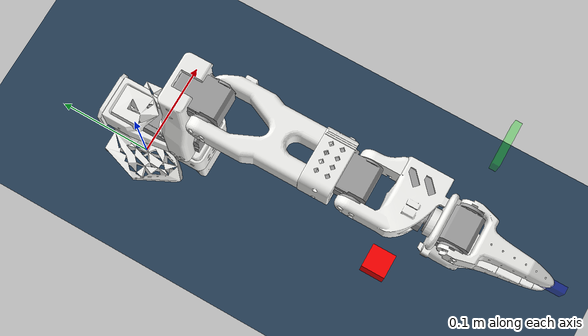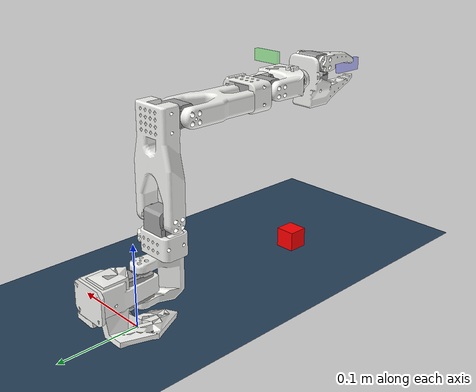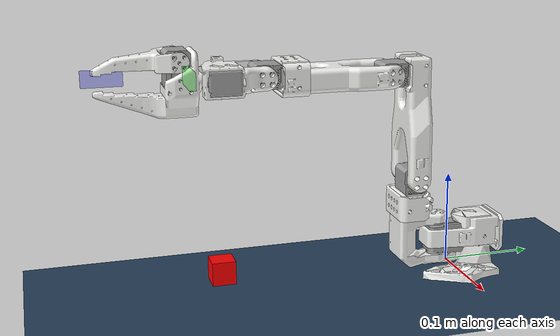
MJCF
<mujoco model="standalone_scene">
  <compiler angle="radian" meshdir="/home/ben/all_projects/SO-ARM100/Simulation/SO101/assets" autolimits="true"/>

  <option gravity="0 0 -9.81" timestep="0.002" iterations="40" cone="elliptic" />

  <size nconmax="500" njmax="2000" />

  <visual>
    <headlight active="0"/>
  </visual>

  <default>
    <default class="so101_new_calib">
      <joint damping="1" frictionloss="0.1" armature="0.005"/>
      <position kp="50"/>
      <default class="visual">
        <geom type="mesh" contype="0" conaffinity="0" group="2"/>
      </default>
      <default class="collision">
        <geom group="3" contype="1" conaffinity="1"/>
      </default>
    </default>
  </default>
  <!-- Additional joints_properties.xml -->
  <default>
    <default class="sts3215">
      <geom contype="0" conaffinity="0"/>
      <joint damping="0.60" frictionloss="0.052" armature="0.028"/>
      <position kp="17.8"/>
    </default>
    <default class="backlash">
      <!-- +/- 0.5° of backlash -->
      <joint damping="0.01" frictionloss="0" armature="0.01" limited="true" range="-0.008726646259971648 0.008726646259971648"/>
    </default>
  </default>

  <asset>
    <!-- Assets from the scene -->
    <texture type="2d" name="groundplane" builtin="checker" rgb1="0.2 0.3 0.4" rgb2="0.1 0.2 0.3" width="100" height="100"/>
    <material name="ground_mat" texture="groundplane" texrepeat="10 10" />

    <!-- Assets from the robot -->
    <mesh file="rotation_pitch_so101_v1.stl"/>
    <mesh file="moving_jaw_so101_v1.stl"/>
    <mesh file="sts3215_03a_v1.stl"/>
    <mesh file="motor_holder_so101_wrist_v1.stl"/>
    <mesh file="wrist_roll_follower_so101_v1.stl"/>
    <mesh file="base_so101_v2.stl"/>
    <mesh file="under_arm_so101_v1.stl"/>
    <mesh file="wrist_roll_pitch_so101_v2.stl"/>
    <mesh file="waveshare_mounting_plate_so101_v2.stl"/>
    <mesh file="sts3215_03a_no_horn_v1.stl"/>
    <mesh file="motor_holder_so101_base_v1.stl"/>
    <mesh file="base_motor_holder_so101_v1.stl"/>
    <mesh file="upper_arm_so101_v1.stl"/>
    <material name="base_motor_holder_so101_v1_material" rgba="0.964706 0.964706 0.952941 1"/>
    <material name="base_so101_v2_material" rgba="0.964706 0.964706 0.952941 1"/>
    <material name="sts3215_03a_v1_material" rgba="0.627451 0.627451 0.627451 1"/>
    <material name="waveshare_mounting_plate_so101_v2_material" rgba="0.964706 0.964706 0.952941 1"/>
    <material name="motor_holder_so101_base_v1_material" rgba="0.964706 0.964706 0.952941 1"/>
    <material name="rotation_pitch_so101_v1_material" rgba="0.964706 0.964706 0.952941 1"/>
    <material name="upper_arm_so101_v1_material" rgba="0.964706 0.964706 0.952941 1"/>
    <material name="under_arm_so101_v1_material" rgba="0.964706 0.964706 0.952941 1"/>
    <material name="motor_holder_so101_wrist_v1_material" rgba="0.964706 0.964706 0.952941 1"/>
    <material name="sts3215_03a_no_horn_v1_material" rgba="0.627451 0.627451 0.627451 1"/>
    <material name="wrist_roll_pitch_so101_v2_material" rgba="0.964706 0.964706 0.952941 1"/>
    <material name="wrist_roll_follower_so101_v1_material" rgba="0.964706 0.964706 0.952941 1"/>
    <material name="moving_jaw_so101_v1_material" rgba="0.964706 0.964706 0.952941 1"/>
  </asset>

  <worldbody>
    <!-- Ground plane -->
    <light name="top" pos="0 0 2" castshadow="true"/>
    <light name="top2" pos="1 1 2" castshadow="true"/>
    <geom name="floor" type="plane" size="1.5 1.5 0.1" material="ground_mat" contype="1" conaffinity="1" />

    <!-- Robot -->
    <body name="base" pos="0 0 -0.04" quat="1 0 0 0" childclass="so101_new_calib">
      <inertial pos="0.020739 0.00204287 0.065966" mass="0.147" fullinertia="0.000136117 0.000114686 0.000130364 4.59787e-07 9.75275e-08 -4.97151e-06"/>
      <geom type="mesh" class="visual" pos="0.0206915 0.0221255 0.0300817" quat="0.707107 0.707107 7.85046e-16 8.68107e-16" mesh="base_motor_holder_so101_v1" material="base_motor_holder_so101_v1_material"/>
      <geom type="mesh" class="visual" pos="0.0207909 0.0221255 0.0300817" quat="0.707107 0.707107 -0 -0" mesh="base_so101_v2" material="base_so101_v2_material"/>
      <geom type="mesh" class="visual" pos="0.0207909 -0.0105745 0.0761817" quat="0.707107 -7.69919e-16 8.95976e-16 -0.707107" mesh="sts3215_03a_v1" material="sts3215_03a_v1_material"/>
      <geom type="mesh" class="visual" pos="0.0205915 0.0467435 0.0798817" quat="0.707107 0.707107 -3.34318e-15 5.1276e-15" mesh="waveshare_mounting_plate_so101_v2" material="waveshare_mounting_plate_so101_v2_material"/>
      <site group="3" name="base" pos="0.020791 0.0157608 0.0324817" quat="0 1 0 0"/>
      <body name="shoulder" pos="0.0207909 -0.0230745 0.0948817" quat="7.88629e-16 -0.707107 -0.707107 7.69003e-16">
        <joint axis="0 0 1" name="1" type="hinge" range="-1.9198621771937616 1.9198621771937634" class="sts3215"/>
        <inertial pos="-0.0307604 -1.66727e-05 -0.0252713" mass="0.100006" fullinertia="8.3759e-05 8.10403e-05 2.39783e-05 7.55525e-08 -1.16342e-06 1.54663e-07"/>
        <geom type="mesh" class="visual" pos="-0.0303992 0.000422241 -0.0417" quat="0.5 0.5 0.5 -0.5" mesh="sts3215_03a_v1" material="sts3215_03a_v1_material"/>
        <geom type="mesh" class="collision" pos="-0.0303992 0.000422241 -0.0417" quat="0.5 0.5 0.5 -0.5" mesh="sts3215_03a_v1" material="sts3215_03a_v1_material"/>
        <geom type="mesh" class="visual" pos="-0.0675992 -0.000177759 0.0158499" quat="0.5 0.5 -0.5 0.5" mesh="motor_holder_so101_base_v1" material="motor_holder_so101_base_v1_material"/>
        <geom type="mesh" class="collision" pos="-0.0675992 -0.000177759 0.0158499" quat="0.5 0.5 -0.5 0.5" mesh="motor_holder_so101_base_v1" material="motor_holder_so101_base_v1_material"/>
        <geom type="mesh" class="visual" pos="0.0122008 2.22413e-05 0.0464" quat="0.707107 -0.707107 0 0" mesh="rotation_pitch_so101_v1" material="rotation_pitch_so101_v1_material"/>
        <geom type="mesh" class="collision" pos="0.0122008 2.22413e-05 0.0464" quat="0.707107 -0.707107 0 0" mesh="rotation_pitch_so101_v1" material="rotation_pitch_so101_v1_material"/>
        <body name="upper_arm" pos="-0.0303992 -0.0182778 -0.0542" quat="0.5 -0.5 -0.5 -0.5">
          <joint axis="0 0 1" name="2" type="hinge" range="-1.7453292519943269 1.7453292519943322" class="sts3215"/>
          <inertial pos="-0.0898471 -0.00838224 0.0184089" mass="0.103" fullinertia="4.08002e-05 0.000147318 0.000142487 -1.97819e-05 -4.03016e-08 8.97326e-09"/>
          <geom type="mesh" class="visual" pos="-0.11257 -0.0155 0.0187" quat="4.31775e-16 -0.707107 0.707107 -2.94392e-16" mesh="sts3215_03a_v1" material="sts3215_03a_v1_material"/>
          <geom type="mesh" class="collision" pos="-0.11257 -0.0155 0.0187" quat="4.31775e-16 -0.707107 0.707107 -2.94392e-16" mesh="sts3215_03a_v1" material="sts3215_03a_v1_material"/>
          <geom type="mesh" class="visual" pos="-0.065085 0.012 0.0182" quat="0 1 0 0" mesh="upper_arm_so101_v1" material="upper_arm_so101_v1_material"/>
          <geom type="mesh" class="collision" pos="-0.065085 0.012 0.0182" quat="0 1 0 0" mesh="upper_arm_so101_v1" material="upper_arm_so101_v1_material"/>
          <body name="lower_arm" pos="-0.11257 -0.028 2.46331e-16" quat="0.707107 -2.94392e-16 -3.85906e-16 0.707107">
            <joint axis="0 0 1" name="3" type="hinge" range="-1.7453292519943295 1.5707963267948966" class="sts3215"/>
            <inertial pos="-0.0980701 0.00324376 0.0182831" mass="0.104" fullinertia="2.87438e-05 0.000159844 0.00014529 7.41152e-06 1.26409e-06 -4.90188e-08"/>
            <geom type="mesh" class="visual" pos="-0.0648499 -0.032 0.0182" quat="0 1 0 0" mesh="under_arm_so101_v1" material="under_arm_so101_v1_material"/>
            <geom type="mesh" class="collision" pos="-0.0648499 -0.032 0.0182" quat="0 1 0 0" mesh="under_arm_so101_v1" material="under_arm_so101_v1_material"/>
            <geom type="mesh" class="visual" pos="-0.0648499 -0.032 0.018" quat="3.3891e-16 -1 -1.9186e-15 6.33174e-16" mesh="motor_holder_so101_wrist_v1" material="motor_holder_so101_wrist_v1_material"/>
            <geom type="mesh" class="collision" pos="-0.0648499 -0.032 0.018" quat="3.3891e-16 -1 -1.9186e-15 6.33174e-16" mesh="motor_holder_so101_wrist_v1" material="motor_holder_so101_wrist_v1_material"/>
            <geom type="mesh" class="visual" pos="-0.1224 0.0052 0.0187" quat="8.32667e-16 -1.56949e-15 -1 5.55112e-16" mesh="sts3215_03a_v1" material="sts3215_03a_v1_material"/>
            <geom type="mesh" class="collision" pos="-0.1224 0.0052 0.0187" quat="8.32667e-16 -1.56949e-15 -1 5.55112e-16" mesh="sts3215_03a_v1" material="sts3215_03a_v1_material"/>
            <body name="wrist" pos="-0.1349 0.0052 1.65232e-16" quat="0.707107 1.31614e-15 9.90601e-17 -0.707107">
              <joint axis="0 0 1" name="4" type="hinge" range="-1.6580627969561903 1.658062781833036" class="sts3215"/>
              <inertial pos="-0.000103312 -0.0386143 0.0281156" mass="0.079" fullinertia="3.68263e-05 2.5391e-05 2.1e-05 1.7893e-08 -5.28128e-08 3.6412e-06"/>
              <geom type="mesh" class="visual" pos="5.55112e-17 -0.0424 0.0306" quat="0.5 0.5 0.5 -0.5" mesh="sts3215_03a_no_horn_v1" material="sts3215_03a_no_horn_v1_material"/>
              <geom type="mesh" class="collision" pos="5.55112e-17 -0.0424 0.0306" quat="0.5 0.5 0.5 -0.5" mesh="sts3215_03a_no_horn_v1" material="sts3215_03a_no_horn_v1_material"/>
              <geom type="mesh" class="visual" pos="0 -0.028 0.0181" quat="0.5 -0.5 -0.5 -0.5" mesh="wrist_roll_pitch_so101_v2" material="wrist_roll_pitch_so101_v2_material"/>
              <geom type="mesh" class="collision" pos="0 -0.028 0.0181" quat="0.5 -0.5 -0.5 -0.5" mesh="wrist_roll_pitch_so101_v2" material="wrist_roll_pitch_so101_v2_material"/>
              <body name="gripper" pos="0 -0.0611 0.0181" quat="3.31663e-08 -3.31663e-08 -0.707107 -0.707107">
                <joint axis="0 0 1" name="5" type="hinge" range="-2.7925268969992407 2.7925267093826136" class="sts3215"/>
                <inertial pos="0.000213627 0.000245138 -0.025187" mass="0.087" fullinertia="2.75087e-05 4.33657e-05 3.45059e-05 -3.35241e-07 -5.7352e-06 -5.17847e-08"/>
                <geom type="mesh" class="visual" pos="0.0077 0.0001 -0.0234" quat="0.707107 -0.707107 6.48145e-15 1.58472e-15" mesh="sts3215_03a_v1" material="sts3215_03a_v1_material"/>
                <geom type="mesh" class="collision" pos="0.0077 0.0001 -0.0234" quat="0.707107 -0.707107 6.48145e-15 1.58472e-15" mesh="sts3215_03a_v1" material="sts3215_03a_v1_material"/>
                <geom type="mesh" class="visual" pos="5.55112e-17 -0.000218214 0.000949706" quat="0 1 0 0" mesh="wrist_roll_follower_so101_v1" material="wrist_roll_follower_so101_v1_material"/>
                <geom type="mesh" class="collision" pos="5.55112e-17 -0.000218214 0.000949706" quat="0 1 0 0" mesh="wrist_roll_follower_so101_v1" material="wrist_roll_follower_so101_v1_material"/>
                <!-- Fixed jaw collision box - positioned at actual gripping surface -->
                <geom name="fixed_jaw" type="box" size="0.008 0.003 0.02" pos="0.005 0 -0.095" rgba="0 0 1 0.3" contype="1" conaffinity="1" margin="0.0015"/>
                <site group="3" name="gripper" pos="-0.0079 -0.000218121 -0.0981274" quat="0.5 -0.5 0.5 -0.5"/>
                <body name="moving_jaw_so101_v1" pos="0.0202 0.0188 -0.0234" quat="0.707107 0.707107 1.47485e-15 -6.52758e-15">
                  <joint axis="0 0 1" name="6" type="hinge" range="-0.17453292519943295 1.7453292519943295" class="sts3215"/>
                  <inertial pos="-0.00157495 -0.0300244 0.0192755" mass="0.012" fullinertia="6.61427e-06 1.89032e-06 5.28738e-06 -3.19807e-07 -5.90717e-09 -1.09945e-07"/>
                  <geom type="mesh" class="visual" pos="-5.55112e-17 -1.94746e-17 0.0189" quat="1 -0 1.86338e-16 6.90343e-24" mesh="moving_jaw_so101_v1" material="moving_jaw_so101_v1_material"/>
                  <geom type="mesh" class="collision" pos="-5.55112e-17 -1.94746e-17 0.0189" quat="1 -0 1.86338e-16 6.90343e-24" mesh="moving_jaw_so101_v1" material="moving_jaw_so101_v1_material"/>
                  <!-- Moving jaw collision box - positioned at actual gripping surface -->
                  <geom name="moving_jaw_tip" type="box" size="0.008 0.003 0.02" pos="-0.005 0 -0.06" rgba="0 1 0 0.3" contype="1" conaffinity="1" margin="0.0015"/>
                </body>
              </body>
            </body>
          </body>
        </body>
      </body>
    </body>

    <!-- A cube to be manipulated -->
    <body name="cube" pos="0.01 -0.26 0.02">
        <joint name="cube_joint" type="free" frictionloss="0.01" />
        <inertial pos="0 0 0" mass="0.05" diaginertia="0.0008 0.0008 0.0008" />
        <geom name="cube_geom" type="box" size="0.0125 0.0125 0.0125" rgba="1 0 0 1" friction="1 0.005 0.0001" contype="1" conaffinity="1" margin="0.0015"/>
    </body>
  </worldbody>

  <actuator>
    <position class="sts3215" name="1" joint="1" forcerange="-3.35 3.35"/>
    <position class="sts3215" name="2" joint="2" forcerange="-3.35 3.35"/>
    <position class="sts3215" name="3" joint="3" forcerange="-3.35 3.35"/>
    <position class="sts3215" name="4" joint="4" forcerange="-3.35 3.35"/>
    <position class="sts3215" name="5" joint="5" forcerange="-3.35 3.35"/>
    <position class="sts3215" name="6" joint="6" forcerange="-3.35 3.35"/>
  </actuator>

  <equality/>
</mujoco>
